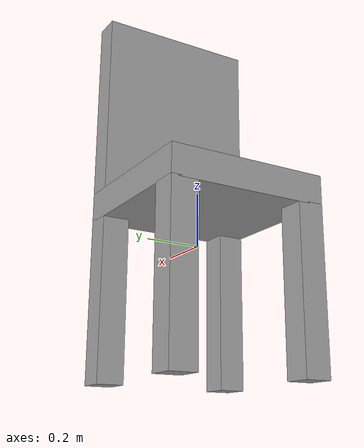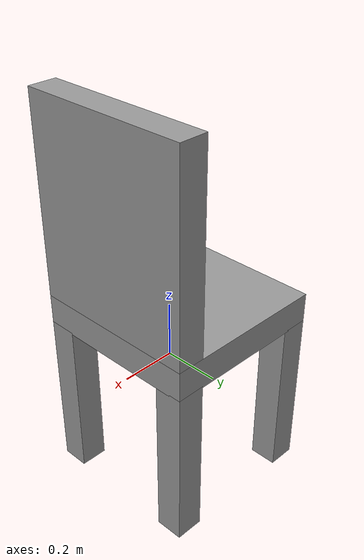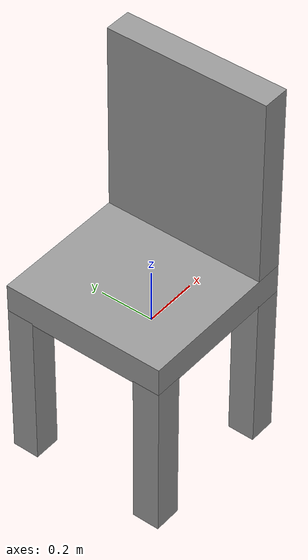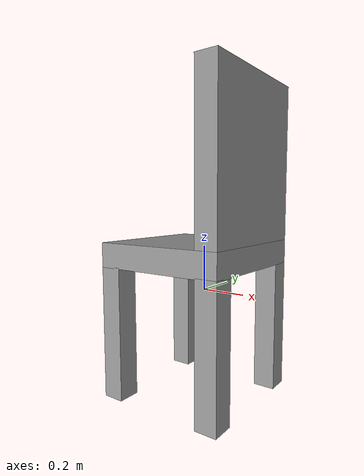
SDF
<?xml version='1.0'?>
<sdf version='1.5'>
  <model name='chair'>
    <link name='link_0_clone'>
      <inertial>
        <mass>1</mass>
      </inertial>
      <pose>-0.041667 -0 0.165833 0 -0 0</pose>
      <gravity>0</gravity>
      <self_collide>0</self_collide>
      <kinematic>0</kinematic>
      <enable_wind>0</enable_wind>
      <visual name='visual'>
        <pose>0 0 0 0 -0 0</pose>
        <geometry>
          <box>
            <size>0.6 0.6 0.11</size>
          </box>
        </geometry>
        <material>
          <lighting>1</lighting>
          <script>
            <uri>file://media/materials/scripts/gazebo.material</uri>
            <name>Gazebo/Grey</name>
          </script>
          <shader type='pixel'>
            <normal_map>__default__</normal_map>
          </shader>
          <ambient>0.3 0.3 0.3 1</ambient>
          <diffuse>0.7 0.7 0.7 1</diffuse>
          <specular>0.01 0.01 0.01 1</specular>
          <emissive>0 0 0 1</emissive>
        </material>
        <transparency>0</transparency>
        <cast_shadows>1</cast_shadows>
      </visual>
      <collision name='collision'>
        <laser_retro>0</laser_retro>
        <max_contacts>10</max_contacts>
        <pose>0 0 0 0 -0 0</pose>
        <geometry>
          <box>
            <size>0.6 0.6 0.1</size>
          </box>
        </geometry>
        <surface>
          <friction>
            <ode>
              <mu>1</mu>
              <mu2>1</mu2>
              <fdir1>0 0 0</fdir1>
              <slip1>0</slip1>
              <slip2>0</slip2>
            </ode>
            <torsional>
              <coefficient>1</coefficient>
              <patch_radius>0</patch_radius>
              <surface_radius>0</surface_radius>
              <use_patch_radius>1</use_patch_radius>
              <ode>
                <slip>0</slip>
              </ode>
            </torsional>
          </friction>
          <bounce>
            <restitution_coefficient>0</restitution_coefficient>
            <threshold>1e+06</threshold>
          </bounce>
          <contact>
            <collide_without_contact>0</collide_without_contact>
            <collide_without_contact_bitmask>1</collide_without_contact_bitmask>
            <collide_bitmask>1</collide_bitmask>
            <ode>
              <soft_cfm>0</soft_cfm>
              <soft_erp>0.2</soft_erp>
              <kp>1e+13</kp>
              <kd>1</kd>
              <max_vel>0.01</max_vel>
              <min_depth>0</min_depth>
            </ode>
            <bullet>
              <split_impulse>1</split_impulse>
              <split_impulse_penetration_threshold>-0.01</split_impulse_penetration_threshold>
              <soft_cfm>0</soft_cfm>
              <soft_erp>0.2</soft_erp>
              <kp>1e+13</kp>
              <kd>1</kd>
            </bullet>
          </contact>
        </surface>
      </collision>
    </link>
    <link name='link_1_clone'>
      <inertial>
        <mass>1</mass>
        <inertia>
          <ixx>0.166667</ixx>
          <ixy>0</ixy>
          <ixz>0</ixz>
          <iyy>0.166667</iyy>
          <iyz>0</iyz>
          <izz>0.166667</izz>
        </inertia>
        <pose>0 0 0 0 -0 0</pose>
      </inertial>
      <pose>-0.291667 0.25 -0.184167 0 -0 0</pose>
      <gravity>1</gravity>
      <self_collide>0</self_collide>
      <kinematic>0</kinematic>
      <enable_wind>0</enable_wind>
      <visual name='visual'>
        <pose>0 0 0 0 -0 0</pose>
        <geometry>
          <box>
            <size>0.1 0.1 0.6</size>
          </box>
        </geometry>
        <material>
          <lighting>1</lighting>
          <script>
            <uri>file://media/materials/scripts/gazebo.material</uri>
            <name>Gazebo/Grey</name>
          </script>
          <shader type='pixel'>
            <normal_map>__default__</normal_map>
          </shader>
          <ambient>0.3 0.3 0.3 1</ambient>
          <diffuse>0.7 0.7 0.7 1</diffuse>
          <specular>0.01 0.01 0.01 1</specular>
          <emissive>0 0 0 1</emissive>
        </material>
        <transparency>0</transparency>
        <cast_shadows>1</cast_shadows>
      </visual>
      <collision name='collision'>
        <laser_retro>0</laser_retro>
        <max_contacts>10</max_contacts>
        <pose>0 0 0 0 -0 0</pose>
        <geometry>
          <box>
            <size>0.1 0.1 0.6</size>
          </box>
        </geometry>
        <surface>
          <friction>
            <ode>
              <mu>1</mu>
              <mu2>1</mu2>
              <fdir1>0 0 0</fdir1>
              <slip1>0</slip1>
              <slip2>0</slip2>
            </ode>
            <torsional>
              <coefficient>1</coefficient>
              <patch_radius>0</patch_radius>
              <surface_radius>0</surface_radius>
              <use_patch_radius>1</use_patch_radius>
              <ode>
                <slip>0</slip>
              </ode>
            </torsional>
          </friction>
          <bounce>
            <restitution_coefficient>0</restitution_coefficient>
            <threshold>1e+06</threshold>
          </bounce>
          <contact>
            <collide_without_contact>0</collide_without_contact>
            <collide_without_contact_bitmask>1</collide_without_contact_bitmask>
            <collide_bitmask>1</collide_bitmask>
            <ode>
              <soft_cfm>0</soft_cfm>
              <soft_erp>0.2</soft_erp>
              <kp>1e+13</kp>
              <kd>1</kd>
              <max_vel>0.01</max_vel>
              <min_depth>0</min_depth>
            </ode>
            <bullet>
              <split_impulse>1</split_impulse>
              <split_impulse_penetration_threshold>-0.01</split_impulse_penetration_threshold>
              <soft_cfm>0</soft_cfm>
              <soft_erp>0.2</soft_erp>
              <kp>1e+13</kp>
              <kd>1</kd>
            </bullet>
          </contact>
        </surface>
      </collision>
    </link>
    <link name='link_1_clone_0'>
      <inertial>
        <mass>1</mass>
        <inertia>
          <ixx>0.166667</ixx>
          <ixy>0</ixy>
          <ixz>0</ixz>
          <iyy>0.166667</iyy>
          <iyz>0</iyz>
          <izz>0.166667</izz>
        </inertia>
        <pose>0 0 0 0 -0 0</pose>
      </inertial>
      <pose>0.208333 0.25 -0.184167 0 -0 0</pose>
      <gravity>1</gravity>
      <self_collide>0</self_collide>
      <kinematic>0</kinematic>
      <enable_wind>0</enable_wind>
      <visual name='visual'>
        <pose>0 0 0 0 -0 0</pose>
        <geometry>
          <box>
            <size>0.1 0.1 0.6</size>
          </box>
        </geometry>
        <material>
          <lighting>1</lighting>
          <script>
            <uri>file://media/materials/scripts/gazebo.material</uri>
            <name>Gazebo/Grey</name>
          </script>
          <shader type='pixel'>
            <normal_map>__default__</normal_map>
          </shader>
          <ambient>0.3 0.3 0.3 1</ambient>
          <diffuse>0.7 0.7 0.7 1</diffuse>
          <specular>0.01 0.01 0.01 1</specular>
          <emissive>0 0 0 1</emissive>
        </material>
        <transparency>0</transparency>
        <cast_shadows>1</cast_shadows>
      </visual>
      <collision name='collision'>
        <laser_retro>0</laser_retro>
        <max_contacts>10</max_contacts>
        <pose>0 0 0 0 -0 0</pose>
        <geometry>
          <box>
            <size>0.1 0.1 0.6</size>
          </box>
        </geometry>
        <surface>
          <friction>
            <ode>
              <mu>1</mu>
              <mu2>1</mu2>
              <fdir1>0 0 0</fdir1>
              <slip1>0</slip1>
              <slip2>0</slip2>
            </ode>
            <torsional>
              <coefficient>1</coefficient>
              <patch_radius>0</patch_radius>
              <surface_radius>0</surface_radius>
              <use_patch_radius>1</use_patch_radius>
              <ode>
                <slip>0</slip>
              </ode>
            </torsional>
          </friction>
          <bounce>
            <restitution_coefficient>0</restitution_coefficient>
            <threshold>1e+06</threshold>
          </bounce>
          <contact>
            <collide_without_contact>0</collide_without_contact>
            <collide_without_contact_bitmask>1</collide_without_contact_bitmask>
            <collide_bitmask>1</collide_bitmask>
            <ode>
              <soft_cfm>0</soft_cfm>
              <soft_erp>0.2</soft_erp>
              <kp>1e+13</kp>
              <kd>1</kd>
              <max_vel>0.01</max_vel>
              <min_depth>0</min_depth>
            </ode>
            <bullet>
              <split_impulse>1</split_impulse>
              <split_impulse_penetration_threshold>-0.01</split_impulse_penetration_threshold>
              <soft_cfm>0</soft_cfm>
              <soft_erp>0.2</soft_erp>
              <kp>1e+13</kp>
              <kd>1</kd>
            </bullet>
          </contact>
        </surface>
      </collision>
    </link>
    <link name='link_1_clone_1'>
      <inertial>
        <mass>1</mass>
        <inertia>
          <ixx>0.166667</ixx>
          <ixy>0</ixy>
          <ixz>0</ixz>
          <iyy>0.166667</iyy>
          <iyz>0</iyz>
          <izz>0.166667</izz>
        </inertia>
        <pose>0 0 0 0 -0 0</pose>
      </inertial>
      <pose>0.208333 -0.25 -0.184167 0 -0 0</pose>
      <gravity>1</gravity>
      <self_collide>0</self_collide>
      <kinematic>0</kinematic>
      <enable_wind>0</enable_wind>
      <visual name='visual'>
        <pose>0 0 0 0 -0 0</pose>
        <geometry>
          <box>
            <size>0.1 0.1 0.6</size>
          </box>
        </geometry>
        <material>
          <lighting>1</lighting>
          <script>
            <uri>file://media/materials/scripts/gazebo.material</uri>
            <name>Gazebo/Grey</name>
          </script>
          <shader type='pixel'>
            <normal_map>__default__</normal_map>
          </shader>
          <ambient>0.3 0.3 0.3 1</ambient>
          <diffuse>0.7 0.7 0.7 1</diffuse>
          <specular>0.01 0.01 0.01 1</specular>
          <emissive>0 0 0 1</emissive>
        </material>
        <transparency>0</transparency>
        <cast_shadows>1</cast_shadows>
      </visual>
      <collision name='collision'>
        <laser_retro>0</laser_retro>
        <max_contacts>10</max_contacts>
        <pose>0 0 0 0 -0 0</pose>
        <geometry>
          <box>
            <size>0.1 0.1 0.6</size>
          </box>
        </geometry>
        <surface>
          <friction>
            <ode>
              <mu>1</mu>
              <mu2>1</mu2>
              <fdir1>0 0 0</fdir1>
              <slip1>0</slip1>
              <slip2>0</slip2>
            </ode>
            <torsional>
              <coefficient>1</coefficient>
              <patch_radius>0</patch_radius>
              <surface_radius>0</surface_radius>
              <use_patch_radius>1</use_patch_radius>
              <ode>
                <slip>0</slip>
              </ode>
            </torsional>
          </friction>
          <bounce>
            <restitution_coefficient>0</restitution_coefficient>
            <threshold>1e+06</threshold>
          </bounce>
          <contact>
            <collide_without_contact>0</collide_without_contact>
            <collide_without_contact_bitmask>1</collide_without_contact_bitmask>
            <collide_bitmask>1</collide_bitmask>
            <ode>
              <soft_cfm>0</soft_cfm>
              <soft_erp>0.2</soft_erp>
              <kp>1e+13</kp>
              <kd>1</kd>
              <max_vel>0.01</max_vel>
              <min_depth>0</min_depth>
            </ode>
            <bullet>
              <split_impulse>1</split_impulse>
              <split_impulse_penetration_threshold>-0.01</split_impulse_penetration_threshold>
              <soft_cfm>0</soft_cfm>
              <soft_erp>0.2</soft_erp>
              <kp>1e+13</kp>
              <kd>1</kd>
            </bullet>
          </contact>
        </surface>
      </collision>
    </link>
    <link name='link_1_clone_clone'>
      <inertial>
        <mass>1</mass>
        <inertia>
          <ixx>0.166667</ixx>
          <ixy>0</ixy>
          <ixz>0</ixz>
          <iyy>0.166667</iyy>
          <iyz>0</iyz>
          <izz>0.166667</izz>
        </inertia>
        <pose>0 0 0 0 -0 0</pose>
      </inertial>
      <pose>-0.291667 -0.25 -0.184167 0 -0 0</pose>
      <gravity>1</gravity>
      <self_collide>0</self_collide>
      <kinematic>0</kinematic>
      <enable_wind>0</enable_wind>
      <visual name='visual'>
        <pose>0 0 0 0 -0 0</pose>
        <geometry>
          <box>
            <size>0.1 0.1 0.6</size>
          </box>
        </geometry>
        <material>
          <lighting>1</lighting>
          <script>
            <uri>file://media/materials/scripts/gazebo.material</uri>
            <name>Gazebo/Grey</name>
          </script>
          <shader type='pixel'>
            <normal_map>__default__</normal_map>
          </shader>
          <ambient>0.3 0.3 0.3 1</ambient>
          <diffuse>0.7 0.7 0.7 1</diffuse>
          <specular>0.01 0.01 0.01 1</specular>
          <emissive>0 0 0 1</emissive>
        </material>
        <transparency>0</transparency>
        <cast_shadows>1</cast_shadows>
      </visual>
      <collision name='collision'>
        <laser_retro>0</laser_retro>
        <max_contacts>10</max_contacts>
        <pose>0 0 0 0 -0 0</pose>
        <geometry>
          <box>
            <size>0.1 0.1 0.6</size>
          </box>
        </geometry>
        <surface>
          <friction>
            <ode>
              <mu>1</mu>
              <mu2>1</mu2>
              <fdir1>0 0 0</fdir1>
              <slip1>0</slip1>
              <slip2>0</slip2>
            </ode>
            <torsional>
              <coefficient>1</coefficient>
              <patch_radius>0</patch_radius>
              <surface_radius>0</surface_radius>
              <use_patch_radius>1</use_patch_radius>
              <ode>
                <slip>0</slip>
              </ode>
            </torsional>
          </friction>
          <bounce>
            <restitution_coefficient>0</restitution_coefficient>
            <threshold>1e+06</threshold>
          </bounce>
          <contact>
            <collide_without_contact>0</collide_without_contact>
            <collide_without_contact_bitmask>1</collide_without_contact_bitmask>
            <collide_bitmask>1</collide_bitmask>
            <ode>
              <soft_cfm>0</soft_cfm>
              <soft_erp>0.2</soft_erp>
              <kp>1e+13</kp>
              <kd>1</kd>
              <max_vel>0.01</max_vel>
              <min_depth>0</min_depth>
            </ode>
            <bullet>
              <split_impulse>1</split_impulse>
              <split_impulse_penetration_threshold>-0.01</split_impulse_penetration_threshold>
              <soft_cfm>0</soft_cfm>
              <soft_erp>0.2</soft_erp>
              <kp>1e+13</kp>
              <kd>1</kd>
            </bullet>
          </contact>
        </surface>
      </collision>
    </link>
    <link name='link_2_clone'>
      <inertial>
        <mass>1</mass>
        <inertia>
          <ixx>0.166667</ixx>
          <ixy>0</ixy>
          <ixz>0</ixz>
          <iyy>0.166667</iyy>
          <iyz>0</iyz>
          <izz>0.166667</izz>
        </inertia>
        <pose>0 0 0 0 -0 0</pose>
      </inertial>
      <pose>0.208333 -0 0.570833 0 -0 0</pose>
      <gravity>1</gravity>
      <self_collide>0</self_collide>
      <kinematic>0</kinematic>
      <enable_wind>0</enable_wind>
      <visual name='visual'>
        <pose>0 0 0 0 -0 0</pose>
        <geometry>
          <box>
            <size>0.1 0.6 0.7</size>
          </box>
        </geometry>
        <material>
          <lighting>1</lighting>
          <script>
            <uri>file://media/materials/scripts/gazebo.material</uri>
            <name>Gazebo/Grey</name>
          </script>
          <shader type='pixel'>
            <normal_map>__default__</normal_map>
          </shader>
          <ambient>0.3 0.3 0.3 1</ambient>
          <diffuse>0.7 0.7 0.7 1</diffuse>
          <specular>0.01 0.01 0.01 1</specular>
          <emissive>0 0 0 1</emissive>
        </material>
        <transparency>0</transparency>
        <cast_shadows>1</cast_shadows>
      </visual>
      <collision name='collision'>
        <laser_retro>0</laser_retro>
        <max_contacts>10</max_contacts>
        <pose>0 0 0 0 -0 0</pose>
        <geometry>
          <box>
            <size>0.1 0.6 0.7</size>
          </box>
        </geometry>
        <surface>
          <friction>
            <ode>
              <mu>1</mu>
              <mu2>1</mu2>
              <fdir1>0 0 0</fdir1>
              <slip1>0</slip1>
              <slip2>0</slip2>
            </ode>
            <torsional>
              <coefficient>1</coefficient>
              <patch_radius>0</patch_radius>
              <surface_radius>0</surface_radius>
              <use_patch_radius>1</use_patch_radius>
              <ode>
                <slip>0</slip>
              </ode>
            </torsional>
          </friction>
          <bounce>
            <restitution_coefficient>0</restitution_coefficient>
            <threshold>1e+06</threshold>
          </bounce>
          <contact>
            <collide_without_contact>0</collide_without_contact>
            <collide_without_contact_bitmask>1</collide_without_contact_bitmask>
            <collide_bitmask>1</collide_bitmask>
            <ode>
              <soft_cfm>0</soft_cfm>
              <soft_erp>0.2</soft_erp>
              <kp>1e+13</kp>
              <kd>1</kd>
              <max_vel>0.01</max_vel>
              <min_depth>0</min_depth>
            </ode>
            <bullet>
              <split_impulse>1</split_impulse>
              <split_impulse_penetration_threshold>-0.01</split_impulse_penetration_threshold>
              <soft_cfm>0</soft_cfm>
              <soft_erp>0.2</soft_erp>
              <kp>1e+13</kp>
              <kd>1</kd>
            </bullet>
          </contact>
        </surface>
      </collision>
    </link>
    <joint name='link_0_clone_JOINT_0' type='fixed'>
      <parent>link_0_clone</parent>
      <child>link_1_clone_clone</child>
      <pose>0 0 0 0 -0 0</pose>
      <physics>
        <ode>
          <limit>
            <cfm>0</cfm>
            <erp>0.2</erp>
          </limit>
        </ode>
      </physics>
    </joint>
    <joint name='link_0_clone_JOINT_1' type='fixed'>
      <parent>link_0_clone</parent>
      <child>link_1_clone</child>
      <pose>0 0 0 0 -0 0</pose>
      <physics>
        <ode>
          <limit>
            <cfm>0</cfm>
            <erp>0.2</erp>
          </limit>
        </ode>
      </physics>
    </joint>
    <joint name='link_0_clone_JOINT_2' type='fixed'>
      <parent>link_0_clone</parent>
      <child>link_1_clone_1</child>
      <pose>0 0 0 0 -0 0</pose>
      <physics>
        <ode>
          <limit>
            <cfm>0</cfm>
            <erp>0.2</erp>
          </limit>
        </ode>
      </physics>
    </joint>
    <joint name='link_0_clone_JOINT_3' type='fixed'>
      <parent>link_0_clone</parent>
      <child>link_2_clone</child>
      <pose>0 0 0 0 -0 0</pose>
      <physics>
        <ode>
          <limit>
            <cfm>0</cfm>
            <erp>0.2</erp>
          </limit>
        </ode>
      </physics>
    </joint>
    <joint name='link_0_clone_JOINT_4' type='fixed'>
      <parent>link_0_clone</parent>
      <child>link_1_clone_0</child>
      <pose>0 0 0 0 -0 0</pose>
      <physics>
        <ode>
          <limit>
            <cfm>0</cfm>
            <erp>0.2</erp>
          </limit>
        </ode>
      </physics>
    </joint>
    <static>0</static>
    <allow_auto_disable>1</allow_auto_disable>
  </model>
</sdf>
